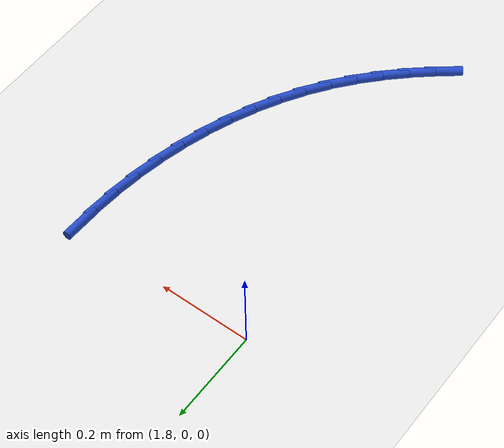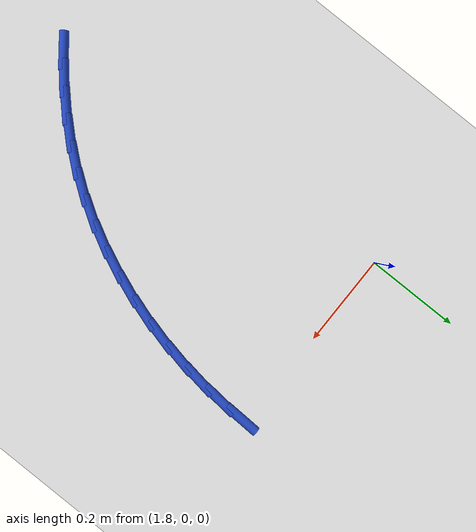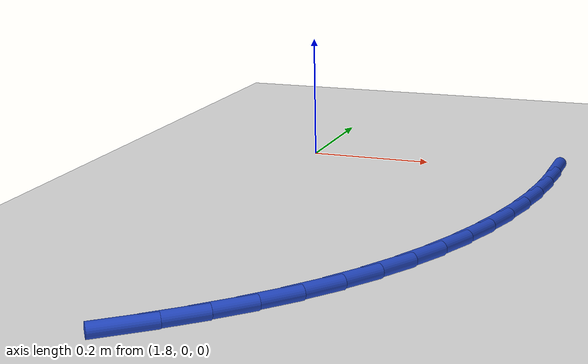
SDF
<sdf version="1.6">
 <world name="default">
  <model name="ground_plane">
   <static>1</static>
   <link name="link">
    <collision name="collision">
     <geometry><plane><normal>0 0 1</normal><size>100 100</size></plane></geometry>
     <surface><friction><ode><mu>100</mu><mu2>50</mu2></ode></friction></surface>
    </collision>
    <visual name="visual">
     <cast_shadows>0</cast_shadows>
     <geometry><plane><normal>0 0 1</normal><size>100 100</size></plane></geometry>
     <material>
      <script><uri>file://media/materials/scripts/gazebo.material</uri><name>Gazebo/WhiteGlow</name></script>
     </material>
    </visual>
   </link>
  </model>
  <model name="line">
   <link name="link_61">
    <pose>2.2182785473278677 -0.014363461192252394 0.01 0 1.57 1.53298246129784</pose>
    <collision name="collision">
     <geometry><cylinder><radius>0.01</radius><length>0.08</length></cylinder></geometry>
    </collision>
    <visual name="visual">
     <material>
      <script><name>Gazebo/Blue</name><uri>file://media/materials/scripts/gazebo.material</uri></script>
     </material>
     <geometry><cylinder><radius>0.01</radius><length>0.08</length></cylinder></geometry>
    </visual>
   </link>
   <link name="link_62">
    <pose>2.2160454934963596 -0.07338914823645064 0.01 0 1.57 1.4785668486106849</pose>
    <collision name="collision">
     <geometry><cylinder><radius>0.01</radius><length>0.08</length></cylinder></geometry>
    </collision>
    <visual name="visual">
     <material>
      <script><name>Gazebo/Blue</name><uri>file://media/materials/scripts/gazebo.material</uri></script>
     </material>
     <geometry><cylinder><radius>0.01</radius><length>0.08</length></cylinder></geometry>
    </visual>
   </link>
   <link name="link_63">
    <pose>2.2106133465154842 -0.13212021662806991 0.01 0 1.57 1.4239148162510888</pose>
    <collision name="collision">
     <geometry><cylinder><radius>0.01</radius><length>0.08</length></cylinder></geometry>
    </collision>
    <visual name="visual">
     <material>
      <script><name>Gazebo/Blue</name><uri>file://media/materials/scripts/gazebo.material</uri></script>
     </material>
     <geometry><cylinder><radius>0.01</radius><length>0.08</length></cylinder></geometry>
    </visual>
   </link>
   <link name="link_64">
    <pose>2.2020023819169294 -0.19032325723057972 0.01 0 1.57 1.3686983419633856</pose>
    <collision name="collision">
     <geometry><cylinder><radius>0.01</radius><length>0.08</length></cylinder></geometry>
    </collision>
    <visual name="visual">
     <material>
      <script><name>Gazebo/Blue</name><uri>file://media/materials/scripts/gazebo.material</uri></script>
     </material>
     <geometry><cylinder><radius>0.01</radius><length>0.08</length></cylinder></geometry>
    </visual>
   </link>
   <link name="link_65">
    <pose>2.190232875232383 -0.24776486090745198 0.01 0 1.57 1.312588671890444</pose>
    <collision name="collision">
     <geometry><cylinder><radius>0.01</radius><length>0.08</length></cylinder></geometry>
    </collision>
    <visual name="visual">
     <material>
      <script><name>Gazebo/Blue</name><uri>file://media/materials/scripts/gazebo.material</uri></script>
     </material>
     <geometry><cylinder><radius>0.01</radius><length>0.08</length></cylinder></geometry>
    </visual>
   </link>
   <link name="link_66">
    <pose>2.175325101993533 -0.3042116185221585 0.01 0 1.57 1.2552586809792425</pose>
    <collision name="collision">
     <geometry><cylinder><radius>0.01</radius><length>0.08</length></cylinder></geometry>
    </collision>
    <visual name="visual">
     <material>
      <script><name>Gazebo/Blue</name><uri>file://media/materials/scripts/gazebo.material</uri></script>
     </material>
     <geometry><cylinder><radius>0.01</radius><length>0.08</length></cylinder></geometry>
    </visual>
   </link>
   <link name="link_67">
    <pose>2.157299337732069 -0.35943012093816923 0.01 0 1.57 1.196386618474844</pose>
    <collision name="collision">
     <geometry><cylinder><radius>0.01</radius><length>0.08</length></cylinder></geometry>
    </collision>
    <visual name="visual">
     <material>
      <script><name>Gazebo/Blue</name><uri>file://media/materials/scripts/gazebo.material</uri></script>
     </material>
     <geometry><cylinder><radius>0.01</radius><length>0.08</length></cylinder></geometry>
    </visual>
   </link>
   <link name="link_68">
    <pose>2.136175857979679 -0.41318695901895564 0.01 0 1.57 1.1356618602519035</pose>
    <collision name="collision">
     <geometry><cylinder><radius>0.01</radius><length>0.08</length></cylinder></geometry>
    </collision>
    <visual name="visual">
     <material>
      <script><name>Gazebo/Blue</name><uri>file://media/materials/scripts/gazebo.material</uri></script>
     </material>
     <geometry><cylinder><radius>0.01</radius><length>0.08</length></cylinder></geometry>
    </visual>
   </link>
   <link name="link_69">
    <pose>2.111974938268051 -0.46524872362798914 0.01 0 1.57 1.0727933061890147</pose>
    <collision name="collision">
     <geometry><cylinder><radius>0.01</radius><length>0.08</length></cylinder></geometry>
    </collision>
    <visual name="visual">
     <material>
      <script><name>Gazebo/Blue</name><uri>file://media/materials/scripts/gazebo.material</uri></script>
     </material>
     <geometry><cylinder><radius>0.01</radius><length>0.08</length></cylinder></geometry>
    </visual>
   </link>
   <link name="link_70">
    <pose>2.0847168541288723 -0.5153820056287415 0.01 0 1.57 1.007521003001383</pose>
    <collision name="collision">
     <geometry><cylinder><radius>0.01</radius><length>0.08</length></cylinder></geometry>
    </collision>
    <visual name="visual">
     <material>
      <script><name>Gazebo/Blue</name><uri>file://media/materials/scripts/gazebo.material</uri></script>
     </material>
     <geometry><cylinder><radius>0.01</radius><length>0.08</length></cylinder></geometry>
    </visual>
   </link>
   <link name="link_71">
    <pose>2.054421881093833 -0.5633533958846824 0.01 0 1.57 0.9396738347868703</pose>
    <collision name="collision">
     <geometry><cylinder><radius>0.01</radius><length>0.08</length></cylinder></geometry>
    </collision>
    <visual name="visual">
     <material>
      <script><name>Gazebo/Blue</name><uri>file://media/materials/scripts/gazebo.material</uri></script>
     </material>
     <geometry><cylinder><radius>0.01</radius><length>0.08</length></cylinder></geometry>
    </visual>
   </link>
   <link name="link_72">
    <pose>2.021111523786422 -0.6089318658141668 0.01 0 1.57 0.8718861767358304</pose>
    <collision name="collision">
     <geometry><cylinder><radius>0.01</radius><length>0.08</length></cylinder></geometry>
    </collision>
    <visual name="visual">
     <material>
      <script><name>Gazebo/Blue</name><uri>file://media/materials/scripts/gazebo.material</uri></script>
     </material>
     <geometry><cylinder><radius>0.01</radius><length>0.08</length></cylinder></geometry>
    </visual>
   </link>
   <link name="link_73">
    <pose>1.9848849555563144 -0.652036818776507 0.01 0 1.57 0.8088237229313968</pose>
    <collision name="collision">
     <geometry><cylinder><radius>0.01</radius><length>0.08</length></cylinder></geometry>
    </collision>
    <visual name="visual">
     <material>
      <script><name>Gazebo/Blue</name><uri>file://media/materials/scripts/gazebo.material</uri></script>
     </material>
     <geometry><cylinder><radius>0.01</radius><length>0.08</length></cylinder></geometry>
    </visual>
   </link>
   <link name="link_74">
    <pose>1.9459640480127 -0.6928253050996019 0.01 0 1.57 0.7512690737054004</pose>
    <collision name="collision">
     <geometry><cylinder><radius>0.01</radius><length>0.08</length></cylinder></geometry>
    </collision>
    <visual name="visual">
     <material>
      <script><name>Gazebo/Blue</name><uri>file://media/materials/scripts/gazebo.material</uri></script>
     </material>
     <geometry><cylinder><radius>0.01</radius><length>0.08</length></cylinder></geometry>
    </visual>
   </link>
   <link name="link_75">
    <pose>1.9045815023441848 -0.7314753502802588 0.01 0 1.57 0.6994119885827654</pose>
    <collision name="collision">
     <geometry><cylinder><radius>0.01</radius><length>0.08</length></cylinder></geometry>
    </collision>
    <visual name="visual">
     <material>
      <script><name>Gazebo/Blue</name><uri>file://media/materials/scripts/gazebo.material</uri></script>
     </material>
     <geometry><cylinder><radius>0.01</radius><length>0.08</length></cylinder></geometry>
    </visual>
   </link>
   <link name="link_76">
    <pose>1.860970019739371 -0.7681649798152866 0.01 0 1.57 0.6532719180436108</pose>
    <collision name="collision">
     <geometry><cylinder><radius>0.01</radius><length>0.08</length></cylinder></geometry>
    </collision>
    <visual name="visual">
     <material>
      <script><name>Gazebo/Blue</name><uri>file://media/materials/scripts/gazebo.material</uri></script>
     </material>
     <geometry><cylinder><radius>0.01</radius><length>0.08</length></cylinder></geometry>
    </visual>
   </link>
  </model>
 </world>
</sdf>
